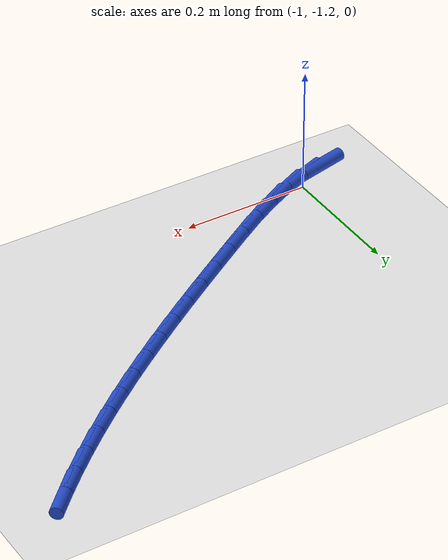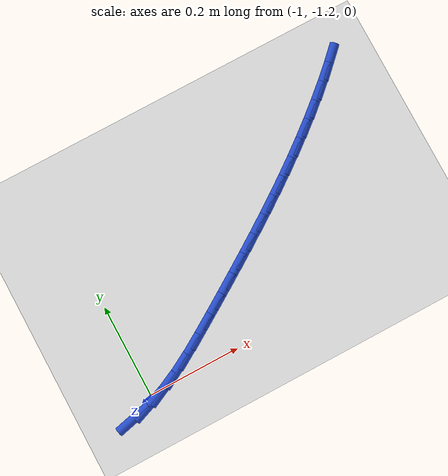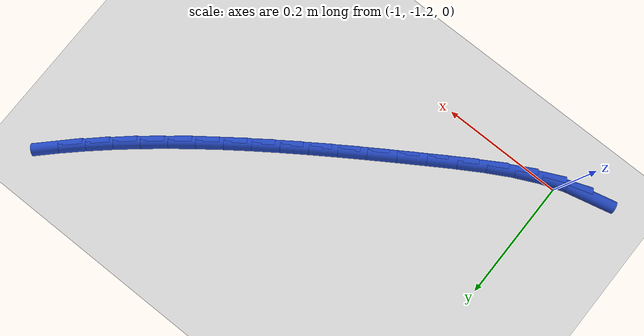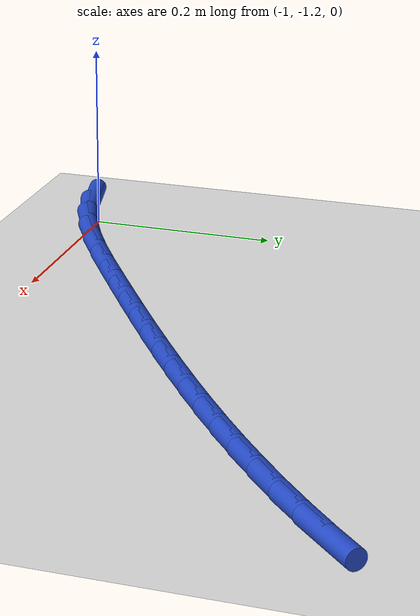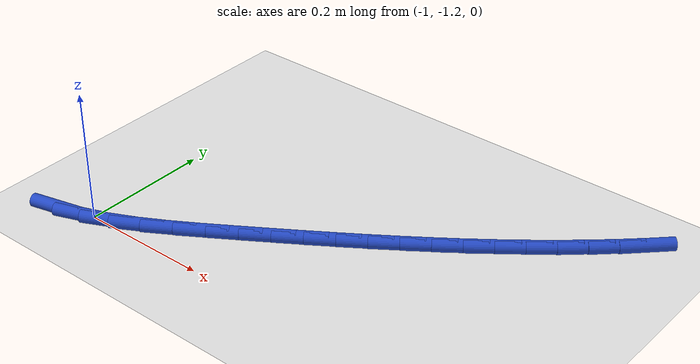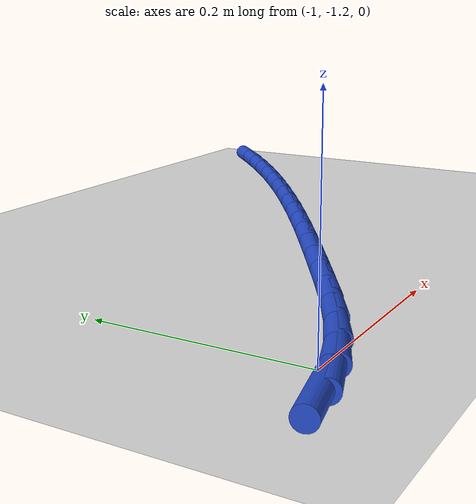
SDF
<sdf version="1.6">
 <world name="default">
  <model name="ground_plane">
   <static>1</static>
   <link name="link">
    <collision name="collision">
     <geometry><plane><normal>0 0 1</normal><size>100 100</size></plane></geometry>
     <surface><friction><ode><mu>100</mu><mu2>50</mu2></ode></friction></surface>
    </collision>
    <visual name="visual">
     <cast_shadows>0</cast_shadows>
     <geometry><plane><normal>0 0 1</normal><size>100 100</size></plane></geometry>
     <material>
      <script><uri>file://media/materials/scripts/gazebo.material</uri><name>Gazebo/WhiteGlow</name></script>
     </material>
    </visual>
   </link>
  </model>
  <model name="line">
   <link name="link_121">
    <pose>-1.0500796468861398 -1.2249954854556477 0.01 0 1.57 0.2313960481954962</pose>
    <collision name="collision">
     <geometry><cylinder><radius>0.01</radius><length>0.08</length></cylinder></geometry>
    </collision>
    <visual name="visual">
     <material>
      <script><name>Gazebo/Blue</name><uri>file://media/materials/scripts/gazebo.material</uri></script>
     </material>
     <geometry><cylinder><radius>0.01</radius><length>0.08</length></cylinder></geometry>
    </visual>
   </link>
   <link name="link_122">
    <pose>-1.0104501952860978 -1.2156581355974074 0.01 0 1.57 0.3569650623033971</pose>
    <collision name="collision">
     <geometry><cylinder><radius>0.01</radius><length>0.08</length></cylinder></geometry>
    </collision>
    <visual name="visual">
     <material>
      <script><name>Gazebo/Blue</name><uri>file://media/materials/scripts/gazebo.material</uri></script>
     </material>
     <geometry><cylinder><radius>0.01</radius><length>0.08</length></cylinder></geometry>
    </visual>
   </link>
   <link name="link_123">
    <pose>-0.9703804877549318 -1.200714463950722 0.01 0 1.57 0.4473224442964107</pose>
    <collision name="collision">
     <geometry><cylinder><radius>0.01</radius><length>0.08</length></cylinder></geometry>
    </collision>
    <visual name="visual">
     <material>
      <script><name>Gazebo/Blue</name><uri>file://media/materials/scripts/gazebo.material</uri></script>
     </material>
     <geometry><cylinder><radius>0.01</radius><length>0.08</length></cylinder></geometry>
    </visual>
   </link>
   <link name="link_124">
    <pose>-0.930093185878196 -1.1813863496269819 0.01 0 1.57 0.5092141676993781</pose>
    <collision name="collision">
     <geometry><cylinder><radius>0.01</radius><length>0.08</length></cylinder></geometry>
    </collision>
    <visual name="visual">
     <material>
      <script><name>Gazebo/Blue</name><uri>file://media/materials/scripts/gazebo.material</uri></script>
     </material>
     <geometry><cylinder><radius>0.01</radius><length>0.08</length></cylinder></geometry>
    </visual>
   </link>
   <link name="link_125">
    <pose>-0.8898109512414455 -1.1588956717375773 0.01 0 1.57 0.5477056927139781</pose>
    <collision name="collision">
     <geometry><cylinder><radius>0.01</radius><length>0.08</length></cylinder></geometry>
    </collision>
    <visual name="visual">
     <material>
      <script><name>Gazebo/Blue</name><uri>file://media/materials/scripts/gazebo.material</uri></script>
     </material>
     <geometry><cylinder><radius>0.01</radius><length>0.08</length></cylinder></geometry>
    </visual>
   </link>
   <link name="link_126">
    <pose>-0.8497564454302337 -1.1344643093938986 0.01 0 1.57 0.5658171028657596</pose>
    <collision name="collision">
     <geometry><cylinder><radius>0.01</radius><length>0.08</length></cylinder></geometry>
    </collision>
    <visual name="visual">
     <material>
      <script><name>Gazebo/Blue</name><uri>file://media/materials/scripts/gazebo.material</uri></script>
     </material>
     <geometry><cylinder><radius>0.01</radius><length>0.08</length></cylinder></geometry>
    </visual>
   </link>
   <link name="link_127">
    <pose>-0.8101520113924487 -1.1093122107309945 0.01 0 1.57 0.5706318932549268</pose>
    <collision name="collision">
     <geometry><cylinder><radius>0.01</radius><length>0.08</length></cylinder></geometry>
    </collision>
    <visual name="visual">
     <material>
      <script><name>Gazebo/Blue</name><uri>file://media/materials/scripts/gazebo.material</uri></script>
     </material>
     <geometry><cylinder><radius>0.01</radius><length>0.08</length></cylinder></geometry>
    </visual>
   </link>
   <link name="link_128">
    <pose>-0.7711579728288327 -1.0842834810040936 0.01 0 1.57 0.5754679078079066</pose>
    <collision name="collision">
     <geometry><cylinder><radius>0.01</radius><length>0.08</length></cylinder></geometry>
    </collision>
    <visual name="visual">
     <material>
      <script><name>Gazebo/Blue</name><uri>file://media/materials/scripts/gazebo.material</uri></script>
     </material>
     <geometry><cylinder><radius>0.01</radius><length>0.08</length></cylinder></geometry>
    </visual>
   </link>
   <link name="link_129">
    <pose>-0.7327989030992633 -1.059399564739732 0.01 0 1.57 0.5821346311269333</pose>
    <collision name="collision">
     <geometry><cylinder><radius>0.01</radius><length>0.08</length></cylinder></geometry>
    </collision>
    <visual name="visual">
     <material>
      <script><name>Gazebo/Blue</name><uri>file://media/materials/scripts/gazebo.material</uri></script>
     </material>
     <geometry><cylinder><radius>0.01</radius><length>0.08</length></cylinder></geometry>
    </visual>
   </link>
   <link name="link_130">
    <pose>-0.6950814073812018 -1.0345730174705374 0.01 0 1.57 0.5906823881064557</pose>
    <collision name="collision">
     <geometry><cylinder><radius>0.01</radius><length>0.08</length></cylinder></geometry>
    </collision>
    <visual name="visual">
     <material>
      <script><name>Gazebo/Blue</name><uri>file://media/materials/scripts/gazebo.material</uri></script>
     </material>
     <geometry><cylinder><radius>0.01</radius><length>0.08</length></cylinder></geometry>
    </visual>
   </link>
   <link name="link_131">
    <pose>-0.658012090852109 -1.009716394729137 0.01 0 1.57 0.6011517858028018</pose>
    <collision name="collision">
     <geometry><cylinder><radius>0.01</radius><length>0.08</length></cylinder></geometry>
    </collision>
    <visual name="visual">
     <material>
      <script><name>Gazebo/Blue</name><uri>file://media/materials/scripts/gazebo.material</uri></script>
     </material>
     <geometry><cylinder><radius>0.01</radius><length>0.08</length></cylinder></geometry>
    </visual>
   </link>
   <link name="link_132">
    <pose>-0.6215975586894474 -0.9847422520481587 0.01 0 1.57 0.6135718067165299</pose>
    <collision name="collision">
     <geometry><cylinder><radius>0.01</radius><length>0.08</length></cylinder></geometry>
    </collision>
    <visual name="visual">
     <material>
      <script><name>Gazebo/Blue</name><uri>file://media/materials/scripts/gazebo.material</uri></script>
     </material>
     <geometry><cylinder><radius>0.01</radius><length>0.08</length></cylinder></geometry>
    </visual>
   </link>
   <link name="link_133">
    <pose>-0.5858444160706779 -0.9595631449602303 0.01 0 1.57 0.6279577242017671</pose>
    <collision name="collision">
     <geometry><cylinder><radius>0.01</radius><length>0.08</length></cylinder></geometry>
    </collision>
    <visual name="visual">
     <material>
      <script><name>Gazebo/Blue</name><uri>file://media/materials/scripts/gazebo.material</uri></script>
     </material>
     <geometry><cylinder><radius>0.01</radius><length>0.08</length></cylinder></geometry>
    </visual>
   </link>
   <link name="link_134">
    <pose>-0.5507592681732619 -0.9340916289979787 0.01 0 1.57 0.644308897692301</pose>
    <collision name="collision">
     <geometry><cylinder><radius>0.01</radius><length>0.08</length></cylinder></geometry>
    </collision>
    <visual name="visual">
     <material>
      <script><name>Gazebo/Blue</name><uri>file://media/materials/scripts/gazebo.material</uri></script>
     </material>
     <geometry><cylinder><radius>0.01</radius><length>0.08</length></cylinder></geometry>
    </visual>
   </link>
   <link name="link_135">
    <pose>-0.5163487201746606 -0.9082402596940318 0.01 0 1.57 0.6626065373166939</pose>
    <collision name="collision">
     <geometry><cylinder><radius>0.01</radius><length>0.08</length></cylinder></geometry>
    </collision>
    <visual name="visual">
     <material>
      <script><name>Gazebo/Blue</name><uri>file://media/materials/scripts/gazebo.material</uri></script>
     </material>
     <geometry><cylinder><radius>0.01</radius><length>0.08</length></cylinder></geometry>
    </visual>
   </link>
   <link name="link_136">
    <pose>-0.48261937725233495 -0.8819215925810167 0.01 0 1.57 0.6828115619087491</pose>
    <collision name="collision">
     <geometry><cylinder><radius>0.01</radius><length>0.08</length></cylinder></geometry>
    </collision>
    <visual name="visual">
     <material>
      <script><name>Gazebo/Blue</name><uri>file://media/materials/scripts/gazebo.material</uri></script>
     </material>
     <geometry><cylinder><radius>0.01</radius><length>0.08</length></cylinder></geometry>
    </visual>
   </link>
   <link name="link_137">
    <pose>-0.4495778445837473 -0.8550481831915616 0.01 0 1.57 0.7048627076925117</pose>
    <collision name="collision">
     <geometry><cylinder><radius>0.01</radius><length>0.08</length></cylinder></geometry>
    </collision>
    <visual name="visual">
     <material>
      <script><name>Gazebo/Blue</name><uri>file://media/materials/scripts/gazebo.material</uri></script>
     </material>
     <geometry><cylinder><radius>0.01</radius><length>0.08</length></cylinder></geometry>
    </visual>
   </link>
   <link name="link_138">
    <pose>-0.41723072734635874 -0.827532587058294 0.01 0 1.57 0.7286750717435644</pose>
    <collision name="collision">
     <geometry><cylinder><radius>0.01</radius><length>0.08</length></cylinder></geometry>
    </collision>
    <visual name="visual">
     <material>
      <script><name>Gazebo/Blue</name><uri>file://media/materials/scripts/gazebo.material</uri></script>
     </material>
     <geometry><cylinder><radius>0.01</radius><length>0.08</length></cylinder></geometry>
    </visual>
   </link>
   <link name="link_139">
    <pose>-0.38558463071763044 -0.7992873597138411 0.01 0 1.57 0.7541392882148954</pose>
    <collision name="collision">
     <geometry><cylinder><radius>0.01</radius><length>0.08</length></cylinder></geometry>
    </collision>
    <visual name="visual">
     <material>
      <script><name>Gazebo/Blue</name><uri>file://media/materials/scripts/gazebo.material</uri></script>
     </material>
     <geometry><cylinder><radius>0.01</radius><length>0.08</length></cylinder></geometry>
    </visual>
   </link>
   <link name="link_140">
    <pose>-0.35464615987502385 -0.7702250566908306 0.01 0 1.57 0.7811215294970542</pose>
    <collision name="collision">
     <geometry><cylinder><radius>0.01</radius><length>0.08</length></cylinder></geometry>
    </collision>
    <visual name="visual">
     <material>
      <script><name>Gazebo/Blue</name><uri>file://media/materials/scripts/gazebo.material</uri></script>
     </material>
     <geometry><cylinder><radius>0.01</radius><length>0.08</length></cylinder></geometry>
    </visual>
   </link>
  </model>
 </world>
</sdf>
